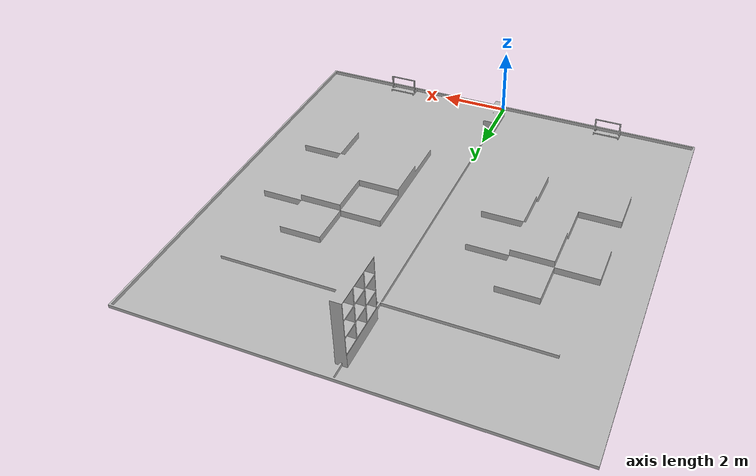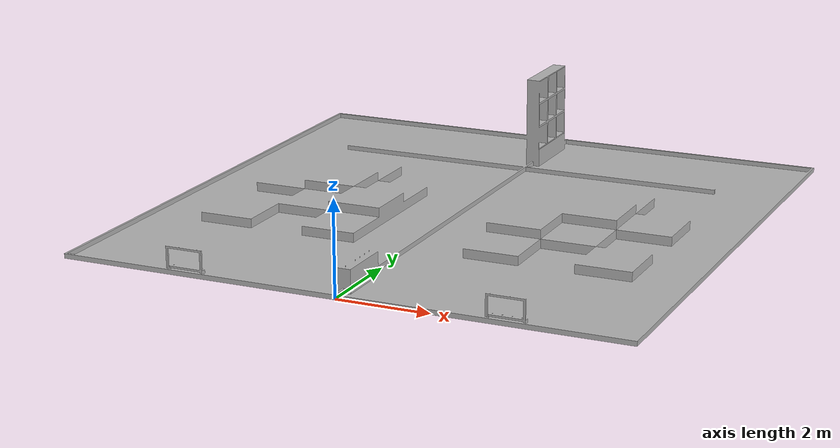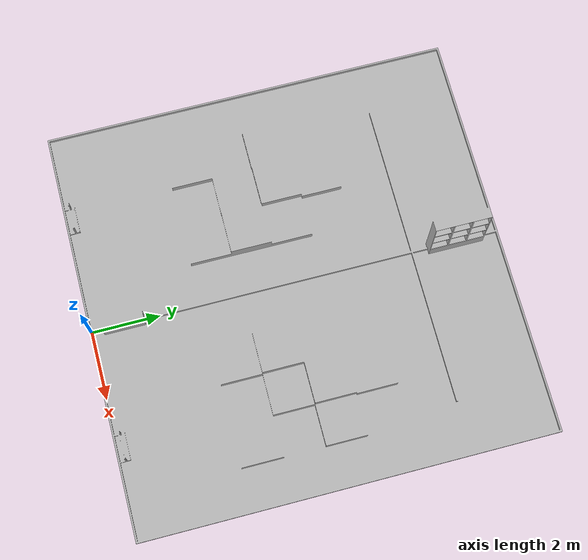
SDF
<?xml version="1.0" ?>
<sdf version="1.8">
    <world name="nhk2026">
        <physics name="1ms" type="ignored">
            <max_step_size>0.001</max_step_size>
            <real_time_factor>4.0</real_time_factor>
        </physics>
        <plugin
            filename="libignition-gazebo-physics-system.so"
            name="ignition::gazebo::systems::Physics">
        </plugin>
        <plugin
            filename="libignition-gazebo-user-commands-system.so"
            name="ignition::gazebo::systems::UserCommands">
        </plugin>
        <plugin
            filename="libignition-gazebo-scene-broadcaster-system.so"
            name="ignition::gazebo::systems::SceneBroadcaster">
        </plugin>

        <plugin filename="libignition-gazebo-sensors-system.so" name="ignition::gazebo::systems::Sensors">
            <render_engine>ogre2</render_engine>
        </plugin>

        <light type="directional" name="sun">
            <cast_shadows>true</cast_shadows>
            <pose>0 0 10 0 0 0</pose>
            <diffuse>0.8 0.8 0.8 1</diffuse>
            <specular>0.2 0.2 0.2 1</specular>
            <attenuation>
                <range>1000</range>
                <constant>0.9</constant>
                <linear>0.01</linear>
                <quadratic>0.001</quadratic>
            </attenuation>
            <direction>-0.5 0.1 -0.9</direction>
        </light>

        <model name="field_nhk">
          <static>1</static>
          <include>
            <uri>model://field_nhk</uri>
            <pose>0 0 0 0 0 0</pose>
          </include>
        </model>

    </world>
</sdf>

<!-- refered from https://qiita.com/N622/items/c875035b387105ae4d95 -->

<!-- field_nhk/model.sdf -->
<sdf version="1.6">
  <model name="field_nhk">
    <static>true</static>
    <link name="link">

      <collision name="collision">
        <geometry>
          <mesh>
            <uri>model://field_nhk/meshes/fieldObj_zySwap.obj</uri>
            <scale>1 1 1</scale>
          </mesh>
        </geometry>
      </collision>

      <visual name="visual">
        <geometry>
          <mesh>
            <uri>model://field_nhk/meshes/fieldObj_zySwap.obj</uri>
            <scale>1 1 1</scale>
          </mesh>
        </geometry>
      </visual>

    </link>
  </model>
</sdf>
